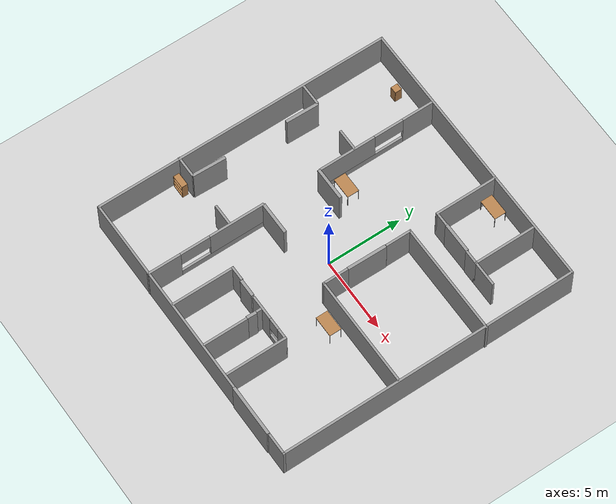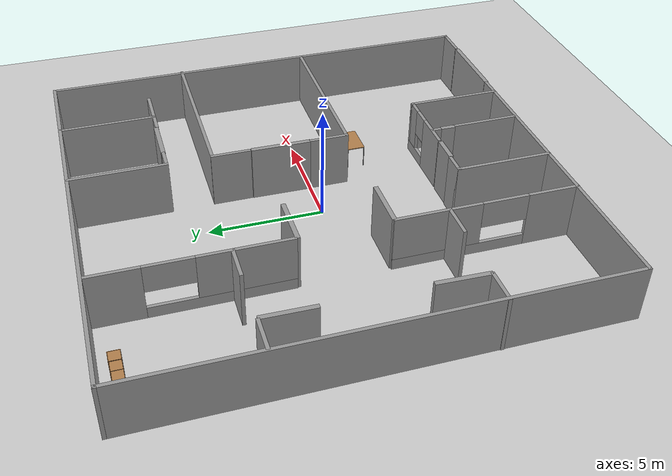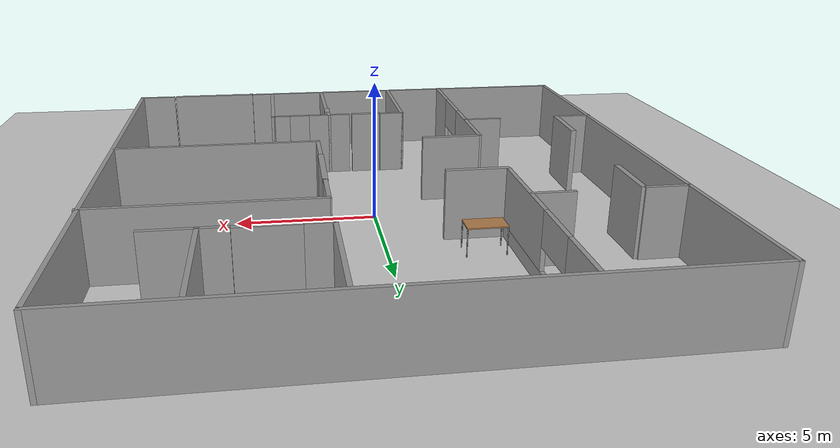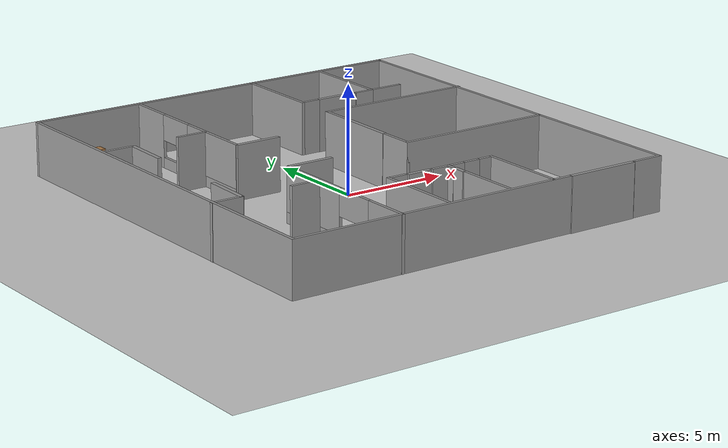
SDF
<sdf version="1.6">
 <world name="default">
  <light name="sun" type="directional">
   <pose>0 0 10 0 -0 0</pose>
   <diffuse>0.8 0.8 0.8 1</diffuse>
   <specular>0.1 0.1 0.1 1</specular>
   <attenuation>
    <range>1000</range>
    <constant>0.9</constant>
    <linear>0.01</linear>
    <quadratic>0.001</quadratic>
   </attenuation>
   <direction>-0.5 0.5 -1</direction>
  </light>
  <model name="ground_plane">
   <static>1</static>
   <link name="link">
    <collision name="collision">
     <geometry><plane><normal>0 0 1</normal><size>100 100</size></plane></geometry>
     <surface><friction><ode><mu>100</mu><mu2>50</mu2></ode></friction></surface>
    </collision>
    <visual name="visual">
     <cast_shadows>0</cast_shadows>
     <geometry><plane><normal>0 0 1</normal><size>100 100</size></plane></geometry>
     <material>
      <script><uri>file://media/materials/scripts/gazebo.material</uri><name>Gazebo/Grey</name></script>
     </material>
    </visual>
   </link>
  </model>
  <gravity>0 0 -9.8</gravity>
  <magnetic_field>6e-06 2.3e-05 -4.2e-05</magnetic_field>
  <atmosphere type="adiabatic"/>
  <physics name="default_physics" default="0" type="ode">
   <max_step_size>0.001</max_step_size>
   <real_time_factor>1</real_time_factor>
   <real_time_update_rate>1000</real_time_update_rate>
  </physics>
  <scene><ambient>0.4 0.4 0.4 1</ambient><background>0.7 0.7 0.7 1</background><shadows>1</shadows></scene>
  <spherical_coordinates>
   <surface_model>EARTH_WGS84</surface_model>
   <latitude_deg>0</latitude_deg>
   <longitude_deg>0</longitude_deg>
   <elevation>0</elevation>
   <heading_deg>0</heading_deg>
  </spherical_coordinates>
  <model name="lvhome">
   <pose>-0.04841 0.41699 0 0 -0 0</pose>
   <link name="Door_0">
    <collision name="Door_0_Collision">
     <geometry><box><size>3.439 0.2 2.5</size></box></geometry>
     <pose>0 0 1.25 0 -0 0</pose>
    </collision>
    <visual name="Door_0_Visual">
     <pose>0 0 1.25 0 -0 0</pose>
     <geometry><box><size>3.439 0.2 2.5</size></box></geometry>
     <material>
      <script><uri>file://media/materials/scripts/gazebo.material</uri><name>Gazebo/Grey</name></script>
     </material>
    </visual>
    <pose>6.2096 -9.93657 0 0 -0 0</pose>
   </link>
   <link name="Door_1">
    <collision name="Door_1_Collision">
     <geometry><box><size>1.17 0.2 2.5</size></box></geometry>
     <pose>0 0 1.25 0 -0 0</pose>
    </collision>
    <visual name="Door_1_Visual">
     <pose>0 0 1.25 0 -0 0</pose>
     <geometry><box><size>1.17 0.2 2.5</size></box></geometry>
     <material>
      <script><uri>file://media/materials/scripts/gazebo.material</uri><name>Gazebo/Grey</name></script>
     </material>
    </visual>
    <pose>-0.264645 -5.84269 0 0 -0 0</pose>
   </link>
   <link name="Door_10">
    <collision name="Door_10_Collision">
     <geometry><box><size>2.026 0.2 2.5</size></box></geometry>
     <pose>0 0 1.25 0 -0 0</pose>
    </collision>
    <visual name="Door_10_Visual">
     <pose>0 0 1.25 0 -0 0</pose>
     <geometry><box><size>2.026 0.2 2.5</size></box></geometry>
     <material>
      <script><uri>file://media/materials/scripts/gazebo.material</uri><name>Gazebo/Grey</name></script>
     </material>
    </visual>
    <pose>3.88951 5.83203 0 0 -0 0</pose>
   </link>
   <link name="Door_2">
    <collision name="Door_2_Collision">
     <geometry><box><size>0.646 0.2 2.5</size></box></geometry>
     <pose>0 0 1.25 0 -0 0</pose>
    </collision>
    <visual name="Door_2_Visual">
     <pose>0 0 1.25 0 -0 0</pose>
     <geometry><box><size>0.646 0.2 2.5</size></box></geometry>
     <material>
      <script><uri>file://media/materials/scripts/gazebo.material</uri><name>Gazebo/Grey</name></script>
     </material>
    </visual>
    <pose>1.29943 -6.59376 0 0 0 -1.60029</pose>
   </link>
   <link name="Door_5">
    <collision name="Door_5_Collision">
     <geometry><box><size>2.246 0.2 2.5</size></box></geometry>
     <pose>0 0 1.25 0 -0 0</pose>
    </collision>
    <visual name="Door_5_Visual">
     <pose>0 0 1.25 0 -0 0</pose>
     <geometry><box><size>2.246 0.2 2.5</size></box></geometry>
     <material>
      <script><uri>file://media/materials/scripts/gazebo.material</uri><name>Gazebo/Grey</name></script>
     </material>
    </visual>
    <pose>-8.05033 -3.25134 0 0 -0 1.53956</pose>
   </link>
   <link name="Door_6">
    <collision name="Door_6_Collision">
     <geometry><box><size>2.215 0.2 2.5</size></box></geometry>
     <pose>0 0 1.25 0 -0 0</pose>
    </collision>
    <visual name="Door_6_Visual">
     <pose>0 0 1.25 0 -0 0</pose>
     <geometry><box><size>2.215 0.2 2.5</size></box></geometry>
     <material>
      <script><uri>file://media/materials/scripts/gazebo.material</uri><name>Gazebo/Grey</name></script>
     </material>
    </visual>
    <pose>-7.94326 3.2032 0 0 0 -1.5889</pose>
   </link>
   <link name="Door_7">
    <collision name="Door_7_Collision">
     <geometry><box><size>2.2 0.2 2.5</size></box></geometry>
     <pose>0 0 1.25 0 -0 0</pose>
    </collision>
    <visual name="Door_7_Visual">
     <pose>0 0 1.25 0 -0 0</pose>
     <geometry><box><size>2.2 0.2 2.5</size></box></geometry>
     <material>
      <script><uri>file://media/materials/scripts/gazebo.material</uri><name>Gazebo/Grey</name></script>
     </material>
    </visual>
    <pose>-3.14487 1.84894 0 0 -0 0</pose>
   </link>
   <link name="Door_8">
    <collision name="Door_8_Collision">
     <geometry><box><size>2.2 0.2 2.5</size></box></geometry>
     <pose>0 0 1.25 0 -0 0</pose>
    </collision>
    <visual name="Door_8_Visual">
     <pose>0 0 1.25 0 -0 0</pose>
     <geometry><box><size>2.2 0.2 2.5</size></box></geometry>
     <material>
      <script><uri>file://media/materials/scripts/gazebo.material</uri><name>Gazebo/Grey</name></script>
     </material>
    </visual>
    <pose>-3.09632 -2.04086 0 0 -0 0</pose>
   </link>
   <link name="Door_9">
    <collision name="Door_9_Collision">
     <geometry><box><size>2.62011 0.2 2.5</size></box></geometry>
     <pose>0 0 1.25 0 -0 0</pose>
    </collision>
    <visual name="Door_9_Visual">
     <pose>0 0 1.25 0 -0 0</pose>
     <geometry><box><size>2.62011 0.2 2.5</size></box></geometry>
     <material>
      <script><uri>file://media/materials/scripts/gazebo.material</uri><name>Gazebo/Grey</name></script>
     </material>
    </visual>
    <pose>1.99502 0.874969 0 0 0 -1.58242</pose>
   </link>
   <link name="Wall_19">
    <collision name="Wall_19_Collision">
     <geometry><box><size>20 0.15 2.5</size></box></geometry>
     <pose>0 0 1.25 0 -0 0</pose>
    </collision>
    <visual name="Wall_19_Visual">
     <pose>0 0 1.25 0 -0 0</pose>
     <geometry><box><size>20 0.15 2.5</size></box></geometry>
     <material>
      <script><uri>file://media/materials/scripts/gazebo.material</uri><name>Gazebo/Grey</name></script>
      <ambient>1 1 1 1</ambient>
     </material>
    </visual>
    <pose>-9.44203 0.006844 0 0 0 -1.5708</pose>
   </link>
   <link name="Wall_24">
    <collision name="Wall_24_Collision">
     <geometry><box><size>19 0.15 2.5</size></box></geometry>
     <pose>0 0 1.25 0 -0 0</pose>
    </collision>
    <visual name="Wall_24_Visual">
     <pose>0 0 1.25 0 -0 0</pose>
     <geometry><box><size>19 0.15 2.5</size></box></geometry>
     <material>
      <script><uri>file://media/materials/scripts/gazebo.material</uri><name>Gazebo/Grey</name></script>
      <ambient>1 1 1 1</ambient>
     </material>
    </visual>
    <pose>-0.017033 9.93184 0 0 -0 0</pose>
   </link>
   <link name="Wall_25">
    <collision name="Wall_25_Collision">
     <geometry><box><size>20 0.15 2.5</size></box></geometry>
     <pose>0 0 1.25 0 -0 0</pose>
    </collision>
    <visual name="Wall_25_Visual">
     <pose>0 0 1.25 0 -0 0</pose>
     <geometry><box><size>20 0.15 2.5</size></box></geometry>
     <material>
      <script><uri>file://media/materials/scripts/gazebo.material</uri><name>Gazebo/Grey</name></script>
      <ambient>1 1 1 1</ambient>
     </material>
    </visual>
    <pose>9.40797 0.006844 0 0 0 -1.5708</pose>
   </link>
   <link name="Wall_26">
    <collision name="Wall_26_Collision">
     <geometry><box><size>1.5 0.15 2.5</size></box></geometry>
     <pose>0 0 1.25 0 -0 0</pose>
    </collision>
    <visual name="Wall_26_Visual">
     <pose>0 0 1.25 0 -0 0</pose>
     <geometry><box><size>1.5 0.15 2.5</size></box></geometry>
     <material>
      <script><uri>file://media/materials/scripts/gazebo.material</uri><name>Gazebo/Grey</name></script>
      <ambient>1 1 1 1</ambient>
     </material>
    </visual>
    <pose>8.73297 -9.91816 0 0 -0 3.14159</pose>
   </link>
   <link name="Wall_28">
    <collision name="Wall_28_Collision">
     <geometry><box><size>14 0.15 2.5</size></box></geometry>
     <pose>0 0 1.25 0 -0 0</pose>
    </collision>
    <visual name="Wall_28_Visual">
     <pose>0 0 1.25 0 -0 0</pose>
     <geometry><box><size>14 0.15 2.5</size></box></geometry>
     <material>
      <script><uri>file://media/materials/scripts/gazebo.material</uri><name>Gazebo/Grey</name></script>
      <ambient>1 1 1 1</ambient>
     </material>
    </visual>
    <pose>-2.51703 -9.91816 0 0 -0 0</pose>
   </link>
   <link name="Wall_30">
    <pose>-4.2172 -6.00685 0 0 -0 1.5708</pose>
    <visual name="Wall_30_Visual_0">
     <pose>-2.87904 0 1.25 0 -0 0</pose>
     <geometry><box><size>2.24191 0.15 2.5</size></box></geometry>
     <material>
      <script><uri>file://media/materials/scripts/gazebo.material</uri><name>Gazebo/Grey</name></script>
      <ambient>1 1 1 1</ambient>
     </material>
    </visual>
    <collision name="Wall_30_Collision_0">
     <geometry><box><size>2.24191 0.15 2.5</size></box></geometry>
     <pose>-2.87904 0 1.25 0 -0 0</pose>
    </collision>
    <visual name="Wall_30_Visual_1">
     <pose>1.12096 0 0.25 0 -0 0</pose>
     <geometry><box><size>5.75809 0.15 0.5</size></box></geometry>
     <material>
      <script><uri>file://media/materials/scripts/gazebo.material</uri><name>Gazebo/Grey</name></script>
      <ambient>1 1 1 1</ambient>
     </material>
    </visual>
    <collision name="Wall_30_Collision_1">
     <geometry><box><size>5.75809 0.15 0.5</size></box></geometry>
     <pose>1.12096 0 0.25 0 -0 0</pose>
    </collision>
    <visual name="Wall_30_Visual_2">
     <pose>2.12096 0 1.5 0 -0 0</pose>
     <geometry><box><size>3.75809 0.15 2</size></box></geometry>
     <material>
      <script><uri>file://media/materials/scripts/gazebo.material</uri><name>Gazebo/Grey</name></script>
      <ambient>1 1 1 1</ambient>
     </material>
    </visual>
    <collision name="Wall_30_Collision_2">
     <geometry><box><size>3.75809 0.15 2</size></box></geometry>
     <pose>2.12096 0 1.5 0 -0 0</pose>
    </collision>
    <visual name="Wall_30_Visual_3">
     <pose>-0.758088 0 1.9 0 -0 0</pose>
     <geometry><box><size>2 0.15 1.2</size></box></geometry>
     <material>
      <script><uri>file://media/materials/scripts/gazebo.material</uri><name>Gazebo/Grey</name></script>
      <ambient>1 1 1 1</ambient>
     </material>
    </visual>
    <collision name="Wall_30_Collision_3">
     <geometry><box><size>2 0.15 1.2</size></box></geometry>
     <pose>-0.758088 0 1.9 0 -0 0</pose>
    </collision>
   </link>
   <link name="Wall_32">
    <pose>-4.21045 5.86584 0 0 0 -1.5708</pose>
    <visual name="Wall_32_Visual_0">
     <pose>-2.94497 0 1.25 0 -0 0</pose>
     <geometry><box><size>2.11005 0.15 2.5</size></box></geometry>
     <material>
      <script><uri>file://media/materials/scripts/gazebo.material</uri><name>Gazebo/Grey</name></script>
      <ambient>1 1 1 1</ambient>
     </material>
    </visual>
    <collision name="Wall_32_Collision_0">
     <geometry><box><size>2.11005 0.15 2.5</size></box></geometry>
     <pose>-2.94497 0 1.25 0 -0 0</pose>
    </collision>
    <visual name="Wall_32_Visual_1">
     <pose>1.05503 0 0.25 0 -0 0</pose>
     <geometry><box><size>5.88995 0.15 0.5</size></box></geometry>
     <material>
      <script><uri>file://media/materials/scripts/gazebo.material</uri><name>Gazebo/Grey</name></script>
      <ambient>1 1 1 1</ambient>
     </material>
    </visual>
    <collision name="Wall_32_Collision_1">
     <geometry><box><size>5.88995 0.15 0.5</size></box></geometry>
     <pose>1.05503 0 0.25 0 -0 0</pose>
    </collision>
    <visual name="Wall_32_Visual_2">
     <pose>2.05503 0 1.5 0 -0 0</pose>
     <geometry><box><size>3.88995 0.15 2</size></box></geometry>
     <material>
      <script><uri>file://media/materials/scripts/gazebo.material</uri><name>Gazebo/Grey</name></script>
      <ambient>1 1 1 1</ambient>
     </material>
    </visual>
    <collision name="Wall_32_Collision_2">
     <geometry><box><size>3.88995 0.15 2</size></box></geometry>
     <pose>2.05503 0 1.5 0 -0 0</pose>
    </collision>
    <visual name="Wall_32_Visual_3">
     <pose>-0.889946 0 1.9 0 -0 0</pose>
     <geometry><box><size>2 0.15 1.2</size></box></geometry>
     <material>
      <script><uri>file://media/materials/scripts/gazebo.material</uri><name>Gazebo/Grey</name></script>
      <ambient>1 1 1 1</ambient>
     </material>
    </visual>
    <collision name="Wall_32_Collision_3">
     <geometry><box><size>2 0.15 1.2</size></box></geometry>
     <pose>-0.889946 0 1.9 0 -0 0</pose>
    </collision>
   </link>
   <link name="Wall_34">
    <collision name="Wall_34_Collision">
     <geometry><box><size>1.5 0.15 2.5</size></box></geometry>
     <pose>0 0 1.25 0 -0 0</pose>
    </collision>
    <visual name="Wall_34_Visual">
     <pose>0 0 1.25 0 -0 0</pose>
     <geometry><box><size>1.5 0.15 2.5</size></box></geometry>
     <material>
      <script><uri>file://media/materials/scripts/gazebo.material</uri><name>Gazebo/Grey</name></script>
      <ambient>1 1 1 1</ambient>
     </material>
    </visual>
    <pose>-8.79265 -4.35243 0 0 -0 0</pose>
   </link>
   <link name="Wall_36">
    <collision name="Wall_36_Collision">
     <geometry><box><size>1.5 0.15 2.5</size></box></geometry>
     <pose>0 0 1.25 0 -0 0</pose>
    </collision>
    <visual name="Wall_36_Visual">
     <pose>0 0 1.25 0 -0 0</pose>
     <geometry><box><size>1.5 0.15 2.5</size></box></geometry>
     <material>
      <script><uri>file://media/materials/scripts/gazebo.material</uri><name>Gazebo/Grey</name></script>
      <ambient>1 1 1 1</ambient>
     </material>
    </visual>
    <pose>-4.93198 -4.35243 0 0 -0 3.14159</pose>
   </link>
   <link name="Wall_40">
    <collision name="Wall_40_Collision">
     <geometry><box><size>1.5 0.15 2.5</size></box></geometry>
     <pose>0 0 1.25 0 -0 0</pose>
    </collision>
    <visual name="Wall_40_Visual">
     <pose>0 0 1.25 0 -0 0</pose>
     <geometry><box><size>1.5 0.15 2.5</size></box></geometry>
     <material>
      <script><uri>file://media/materials/scripts/gazebo.material</uri><name>Gazebo/Grey</name></script>
      <ambient>1 1 1 1</ambient>
     </material>
    </visual>
    <pose>-8.69961 4.30102 0 0 -0 0</pose>
   </link>
   <link name="Wall_42">
    <collision name="Wall_42_Collision">
     <geometry><box><size>1.5 0.15 2.5</size></box></geometry>
     <pose>0 0 1.25 0 -0 0</pose>
    </collision>
    <visual name="Wall_42_Visual">
     <pose>0 0 1.25 0 -0 0</pose>
     <geometry><box><size>1.5 0.15 2.5</size></box></geometry>
     <material>
      <script><uri>file://media/materials/scripts/gazebo.material</uri><name>Gazebo/Grey</name></script>
      <ambient>1 1 1 1</ambient>
     </material>
    </visual>
    <pose>-4.93198 4.34755 0 0 -0 3.14159</pose>
   </link>
   <link name="Wall_44">
    <collision name="Wall_44_Collision">
     <geometry><box><size>4.25 0.15 2.5</size></box></geometry>
     <pose>0 0 1.25 0 -0 0</pose>
    </collision>
    <visual name="Wall_44_Visual">
     <pose>0 0 1.25 0 -0 0</pose>
     <geometry><box><size>4.25 0.15 2.5</size></box></geometry>
     <material>
      <script><uri>file://media/materials/scripts/gazebo.material</uri><name>Gazebo/Grey</name></script>
      <ambient>1 1 1 1</ambient>
     </material>
    </visual>
    <pose>1.97723 7.88042 0 0 0 -1.5708</pose>
   </link>
   <link name="Wall_45">
    <collision name="Wall_45_Collision">
     <geometry><box><size>1 0.15 2.5</size></box></geometry>
     <pose>0 0 1.25 0 -0 0</pose>
    </collision>
    <visual name="Wall_45_Visual">
     <pose>0 0 1.25 0 -0 0</pose>
     <geometry><box><size>1 0.15 2.5</size></box></geometry>
     <material>
      <script><uri>file://media/materials/scripts/gazebo.material</uri><name>Gazebo/Grey</name></script>
      <ambient>1 1 1 1</ambient>
     </material>
    </visual>
    <pose>2.40223 5.83042 0 0 -0 0</pose>
   </link>
   <link name="Wall_47">
    <collision name="Wall_47_Collision">
     <geometry><box><size>4.25 0.15 2.5</size></box></geometry>
     <pose>0 0 1.25 0 -0 0</pose>
    </collision>
    <visual name="Wall_47_Visual">
     <pose>0 0 1.25 0 -0 0</pose>
     <geometry><box><size>4.25 0.15 2.5</size></box></geometry>
     <material>
      <script><uri>file://media/materials/scripts/gazebo.material</uri><name>Gazebo/Grey</name></script>
      <ambient>1 1 1 1</ambient>
     </material>
    </visual>
    <pose>5.83871 7.83389 0 0 0 -1.5708</pose>
   </link>
   <link name="Wall_49">
    <collision name="Wall_49_Collision">
     <geometry><box><size>1 0.15 2.5</size></box></geometry>
     <pose>0 0 1.25 0 -0 0</pose>
    </collision>
    <visual name="Wall_49_Visual">
     <pose>0 0 1.25 0 -0 0</pose>
     <geometry><box><size>1 0.15 2.5</size></box></geometry>
     <material>
      <script><uri>file://media/materials/scripts/gazebo.material</uri><name>Gazebo/Grey</name></script>
      <ambient>1 1 1 1</ambient>
     </material>
    </visual>
    <pose>5.41371 5.78389 0 0 -0 3.14159</pose>
   </link>
   <link name="Wall_51">
    <collision name="Wall_51_Collision">
     <geometry><box><size>1.75 0.15 2.5</size></box></geometry>
     <pose>0 0 1.25 0 -0 0</pose>
    </collision>
    <visual name="Wall_51_Visual">
     <pose>0 0 1.25 0 -0 0</pose>
     <geometry><box><size>1.75 0.15 2.5</size></box></geometry>
     <material>
      <script><uri>file://media/materials/scripts/gazebo.material</uri><name>Gazebo/Grey</name></script>
      <ambient>1 1 1 1</ambient>
     </material>
    </visual>
    <pose>6.63872 5.78389 0 0 -0 0</pose>
   </link>
   <link name="Wall_53">
    <collision name="Wall_53_Collision">
     <geometry><box><size>7.56405 0.15 2.5</size></box></geometry>
     <pose>0 0 1.25 0 -0 0</pose>
    </collision>
    <visual name="Wall_53_Visual">
     <pose>0 0 1.25 0 -0 0</pose>
     <geometry><box><size>7.56405 0.15 2.5</size></box></geometry>
     <material>
      <script><uri>file://media/materials/scripts/gazebo.material</uri><name>Gazebo/Grey</name></script>
      <ambient>1 1 1 1</ambient>
     </material>
    </visual>
    <pose>5.76063 3.88231 0 0 -0 3.14159</pose>
   </link>
   <link name="Wall_55">
    <collision name="Wall_55_Collision">
     <geometry><box><size>1.75 0.15 2.5</size></box></geometry>
     <pose>0 0 1.25 0 -0 0</pose>
    </collision>
    <visual name="Wall_55_Visual">
     <pose>0 0 1.25 0 -0 0</pose>
     <geometry><box><size>1.75 0.15 2.5</size></box></geometry>
     <material>
      <script><uri>file://media/materials/scripts/gazebo.material</uri><name>Gazebo/Grey</name></script>
      <ambient>1 1 1 1</ambient>
     </material>
    </visual>
    <pose>2.00715 3.08231 0 0 0 -1.5708</pose>
   </link>
   <link name="Wall_57">
    <collision name="Wall_57_Collision">
     <geometry><box><size>1.75 0.15 2.5</size></box></geometry>
     <pose>0 0 1.25 0 -0 0</pose>
    </collision>
    <visual name="Wall_57_Visual">
     <pose>0 0 1.25 0 -0 0</pose>
     <geometry><box><size>1.75 0.15 2.5</size></box></geometry>
     <material>
      <script><uri>file://media/materials/scripts/gazebo.material</uri><name>Gazebo/Grey</name></script>
      <ambient>1 1 1 1</ambient>
     </material>
    </visual>
    <pose>1.97723 -1.29094 0 0 0 -1.5708</pose>
   </link>
   <link name="Wall_59">
    <collision name="Wall_59_Collision">
     <geometry><box><size>7.5 0.15 2.5</size></box></geometry>
     <pose>0 0 1.25 0 -0 0</pose>
    </collision>
    <visual name="Wall_59_Visual">
     <pose>0 0 1.25 0 -0 0</pose>
     <geometry><box><size>7.5 0.15 2.5</size></box></geometry>
     <material>
      <script><uri>file://media/materials/scripts/gazebo.material</uri><name>Gazebo/Grey</name></script>
      <ambient>1 1 1 1</ambient>
     </material>
    </visual>
    <pose>5.65223 -2.09094 0 0 -0 0</pose>
   </link>
   <link name="Wall_61">
    <collision name="Wall_61_Collision">
     <geometry><box><size>4.25 0.15 2.5</size></box></geometry>
     <pose>0 0 1.25 0 -0 0</pose>
    </collision>
    <visual name="Wall_61_Visual">
     <pose>0 0 1.25 0 -0 0</pose>
     <geometry><box><size>4.25 0.15 2.5</size></box></geometry>
     <material>
      <script><uri>file://media/materials/scripts/gazebo.material</uri><name>Gazebo/Grey</name></script>
      <ambient>1 1 1 1</ambient>
     </material>
    </visual>
    <pose>-1.79121 -7.83877 0 0 -0 1.5708</pose>
   </link>
   <link name="Wall_62">
    <collision name="Wall_62_Collision">
     <geometry><box><size>1 0.15 2.5</size></box></geometry>
     <pose>0 0 1.25 0 -0 0</pose>
    </collision>
    <visual name="Wall_62_Visual">
     <pose>0 0 1.25 0 -0 0</pose>
     <geometry><box><size>1 0.15 2.5</size></box></geometry>
     <material>
      <script><uri>file://media/materials/scripts/gazebo.material</uri><name>Gazebo/Grey</name></script>
      <ambient>1 1 1 1</ambient>
     </material>
    </visual>
    <pose>-1.36621 -5.78877 0 0 -0 0</pose>
   </link>
   <link name="Wall_64">
    <pose>2.03846 -5.84119 0 0 -0 0</pose>
    <visual name="Wall_64_Visual_0">
     <pose>-0.782015 0 1.25 0 -0 0</pose>
     <geometry><box><size>1.68597 0.15 2.5</size></box></geometry>
     <material>
      <script><uri>file://media/materials/scripts/gazebo.material</uri><name>Gazebo/Grey</name></script>
      <ambient>1 1 1 1</ambient>
     </material>
    </visual>
    <collision name="Wall_64_Collision_0">
     <geometry><box><size>1.68597 0.15 2.5</size></box></geometry>
     <pose>-0.782015 0 1.25 0 -0 0</pose>
    </collision>
    <visual name="Wall_64_Visual_1">
     <pose>0.842985 0 0.25 0 -0 0</pose>
     <geometry><box><size>1.56403 0.15 0.5</size></box></geometry>
     <material>
      <script><uri>file://media/materials/scripts/gazebo.material</uri><name>Gazebo/Grey</name></script>
      <ambient>1 1 1 1</ambient>
     </material>
    </visual>
    <collision name="Wall_64_Collision_1">
     <geometry><box><size>1.56403 0.15 0.5</size></box></geometry>
     <pose>0.842985 0 0.25 0 -0 0</pose>
    </collision>
    <visual name="Wall_64_Visual_2">
     <pose>1.24299 0 1.5 0 -0 0</pose>
     <geometry><box><size>0.76403 0.15 2</size></box></geometry>
     <material>
      <script><uri>file://media/materials/scripts/gazebo.material</uri><name>Gazebo/Grey</name></script>
      <ambient>1 1 1 1</ambient>
     </material>
    </visual>
    <collision name="Wall_64_Collision_2">
     <geometry><box><size>0.76403 0.15 2</size></box></geometry>
     <pose>1.24299 0 1.5 0 -0 0</pose>
    </collision>
    <visual name="Wall_64_Visual_3">
     <pose>0.46097 0 1.9 0 -0 0</pose>
     <geometry><box><size>0.8 0.15 1.2</size></box></geometry>
     <material>
      <script><uri>file://media/materials/scripts/gazebo.material</uri><name>Gazebo/Grey</name></script>
      <ambient>1 1 1 1</ambient>
     </material>
    </visual>
    <collision name="Wall_64_Collision_3">
     <geometry><box><size>0.8 0.15 1.2</size></box></geometry>
     <pose>0.46097 0 1.9 0 -0 0</pose>
    </collision>
   </link>
   <link name="Wall_65">
    <collision name="Wall_65_Collision">
     <geometry><box><size>4.2 0.15 2.5</size></box></geometry>
     <pose>0 0 1.25 0 -0 0</pose>
    </collision>
    <visual name="Wall_65_Visual">
     <pose>0 0 1.25 0 -0 0</pose>
     <geometry><box><size>4.2 0.15 2.5</size></box></geometry>
     <material>
      <script><uri>file://media/materials/scripts/gazebo.material</uri><name>Gazebo/Grey</name></script>
      <ambient>1 1 1 1</ambient>
     </material>
    </visual>
    <pose>3.58846 -7.86619 0 0 0 -1.5708</pose>
   </link>
   <link name="Wall_67">
    <collision name="Wall_67_Collision">
     <geometry><box><size>0.5 0.15 2.5</size></box></geometry>
     <pose>0 0 1.25 0 -0 0</pose>
    </collision>
    <visual name="Wall_67_Visual">
     <pose>0 0 1.25 0 -0 0</pose>
     <geometry><box><size>0.5 0.15 2.5</size></box></geometry>
     <material>
      <script><uri>file://media/materials/scripts/gazebo.material</uri><name>Gazebo/Grey</name></script>
      <ambient>1 1 1 1</ambient>
     </material>
    </visual>
    <pose>1.27937 -6.01619 0 0 0 -1.5708</pose>
   </link>
   <link name="Wall_69">
    <collision name="Wall_69_Collision">
     <geometry><box><size>3 0.15 2.5</size></box></geometry>
     <pose>0 0 1.25 0 -0 0</pose>
    </collision>
    <visual name="Wall_69_Visual">
     <pose>0 0 1.25 0 -0 0</pose>
     <geometry><box><size>3 0.15 2.5</size></box></geometry>
     <material>
      <script><uri>file://media/materials/scripts/gazebo.material</uri><name>Gazebo/Grey</name></script>
      <ambient>1 1 1 1</ambient>
     </material>
    </visual>
    <pose>1.3259 -8.38276 0 0 0 -1.5708</pose>
   </link>
   <static>1</static>
  </model>
  <model name="table">
   <static>0</static>
   <link name="link">
    <collision name="surface">
     <pose>0 0 1 0 -0 0</pose>
     <geometry><box><size>1.5 0.8 0.03</size></box></geometry>
     <surface><friction><ode><mu>0.6</mu><mu2>0.6</mu2></ode></friction></surface>
    </collision>
    <visual name="visual1">
     <pose>0 0 1 0 -0 0</pose>
     <geometry><box><size>1.4 0.8 0.04</size></box></geometry>
     <material>
      <script><uri>file://media/materials/scripts/gazebo.material</uri><name>Gazebo/Wood</name></script>
     </material>
    </visual>
    <collision name="front_left_leg">
     <pose>0.68 0.38 0.5 0 -0 0</pose>
     <geometry><cylinder><radius>0.02</radius><length>1</length></cylinder></geometry>
    </collision>
    <visual name="front_left_leg">
     <pose>0.68 0.38 0.5 0 -0 0</pose>
     <geometry><cylinder><radius>0.02</radius><length>1</length></cylinder></geometry>
     <material>
      <script><uri>file://media/materials/scripts/gazebo.material</uri><name>Gazebo/Grey</name></script>
     </material>
    </visual>
    <collision name="front_right_leg">
     <pose>0.68 -0.38 0.5 0 -0 0</pose>
     <geometry><cylinder><radius>0.02</radius><length>1</length></cylinder></geometry>
    </collision>
    <visual name="front_right_leg">
     <pose>0.68 -0.38 0.5 0 -0 0</pose>
     <geometry><cylinder><radius>0.02</radius><length>1</length></cylinder></geometry>
     <material>
      <script><uri>file://media/materials/scripts/gazebo.material</uri><name>Gazebo/Grey</name></script>
     </material>
    </visual>
    <collision name="back_right_leg">
     <pose>-0.68 -0.38 0.5 0 -0 0</pose>
     <geometry><cylinder><radius>0.02</radius><length>1</length></cylinder></geometry>
    </collision>
    <visual name="back_right_leg">
     <pose>-0.68 -0.38 0.5 0 -0 0</pose>
     <geometry><cylinder><radius>0.02</radius><length>1</length></cylinder></geometry>
     <material>
      <script><uri>file://media/materials/scripts/gazebo.material</uri><name>Gazebo/Grey</name></script>
     </material>
    </visual>
    <collision name="back_left_leg">
     <pose>-0.68 0.38 0.5 0 -0 0</pose>
     <geometry><cylinder><radius>0.02</radius><length>1</length></cylinder></geometry>
    </collision>
    <visual name="back_left_leg">
     <pose>-0.68 0.38 0.5 0 -0 0</pose>
     <geometry><cylinder><radius>0.02</radius><length>1</length></cylinder></geometry>
     <material>
      <script><uri>file://media/materials/scripts/gazebo.material</uri><name>Gazebo/Grey</name></script>
     </material>
    </visual>
    <inertial>
     <inertia><ixx>1</ixx><ixy>0</ixy><ixz>0</ixz><iyy>1</iyy><iyz>0</iyz><izz>1</izz></inertia>
     <mass>1</mass>
    </inertial>
   </link>
   <pose>2.81567 9.64961 -9e-06 0 -1e-06 0</pose>
  </model>
  <model name="cabinet">
   <static>1</static>
   <link name="cabinet_bottom_plate">
    <inertial>
     <pose>0 0 -1 0 -0 0</pose>
     <inertia><ixx>2.05</ixx><ixy>0</ixy><ixz>0</ixz><iyy>2.05</iyy><iyz>0</iyz><izz>2.05</izz></inertia>
     <mass>25</mass>
    </inertial>
    <collision name="cabinet_bottom_plate_geom">
     <pose>0 0 0.01 0 -0 0</pose>
     <geometry><box><size>0.45 0.45 0.02</size></box></geometry>
    </collision>
    <visual name="cabinet_bottom_plate_geom_visual">
     <pose>0 0 0.01 0 -0 0</pose>
     <geometry><box><size>0.45 0.45 0.02</size></box></geometry>
     <material>
      <script><uri>file://media/materials/scripts/gazebo.material</uri><name>Gazebo/Wood</name></script>
     </material>
    </visual>
    <collision name="cabinet_bottom_plate_geom_cabinet_back_plate">
     <pose>0.235 0 0.51 0 -0 0</pose>
     <geometry><box><size>0.02 0.45 1.02</size></box></geometry>
    </collision>
    <visual name="cabinet_bottom_plate_geom_cabinet_back_plate_visual">
     <pose>0.235 0 0.51 0 -0 0</pose>
     <geometry><box><size>0.02 0.45 1.02</size></box></geometry>
     <material>
      <script><uri>file://media/materials/scripts/gazebo.material</uri><name>Gazebo/Wood</name></script>
     </material>
    </visual>
    <collision name="cabinet_bottom_plate_geom_cabinet_left_plate">
     <pose>0 0.235 0.51 0 -0 0</pose>
     <geometry><box><size>0.45 0.02 1.02</size></box></geometry>
    </collision>
    <visual name="cabinet_bottom_plate_geom_cabinet_left_plate_visual">
     <pose>0 0.235 0.51 0 -0 0</pose>
     <geometry><box><size>0.45 0.02 1.02</size></box></geometry>
     <material>
      <script><uri>file://media/materials/scripts/gazebo.material</uri><name>Gazebo/Wood</name></script>
     </material>
    </visual>
    <collision name="cabinet_bottom_plate_geom_cabinet_middle_plate">
     <pose>0 0 0.51 0 -0 0</pose>
     <geometry><box><size>0.45 0.45 0.02</size></box></geometry>
    </collision>
    <visual name="cabinet_bottom_plate_geom_cabinet_middle_plate_visual">
     <pose>0 0 0.51 0 -0 0</pose>
     <geometry><box><size>0.45 0.45 0.02</size></box></geometry>
     <material>
      <script><uri>file://media/materials/scripts/gazebo.material</uri><name>Gazebo/Wood</name></script>
     </material>
    </visual>
    <collision name="cabinet_bottom_plate_geom_cabinet_right_plate">
     <pose>0 -0.235 0.51 0 -0 0</pose>
     <geometry><box><size>0.45 0.02 1.02</size></box></geometry>
    </collision>
    <visual name="cabinet_bottom_plate_geom_cabinet_right_plate_visual">
     <pose>0 -0.235 0.51 0 -0 0</pose>
     <geometry><box><size>0.45 0.02 1.02</size></box></geometry>
     <material>
      <script><uri>file://media/materials/scripts/gazebo.material</uri><name>Gazebo/Wood</name></script>
     </material>
    </visual>
    <collision name="cabinet_bottom_plate_geom_cabinet_top_plate">
     <pose>0 0 1.01 0 -0 0</pose>
     <geometry><box><size>0.45 0.45 0.02</size></box></geometry>
    </collision>
    <visual name="cabinet_bottom_plate_geom_cabinet_top_plate_visual">
     <pose>0 0 1.01 0 -0 0</pose>
     <geometry><box><size>0.45 0.45 0.02</size></box></geometry>
     <material>
      <script><uri>file://media/materials/scripts/gazebo.material</uri><name>Gazebo/Wood</name></script>
     </material>
    </visual>
   </link>
   <pose>-6.89778 9.60511 0 0 -0 0</pose>
  </model>
  <model name="bookshelf">
   <static>1</static>
   <link name="link">
    <inertial><mass>1</mass></inertial>
    <collision name="back">
     <pose>0 0.005 0.6 0 -0 0</pose>
     <geometry><box><size>0.9 0.01 1.2</size></box></geometry>
    </collision>
    <visual name="visual1">
     <pose>0 0.005 0.6 0 -0 0</pose>
     <geometry><box><size>0.9 0.01 1.2</size></box></geometry>
     <material>
      <script><uri>file://media/materials/scripts/gazebo.material</uri><name>Gazebo/Wood</name></script>
     </material>
    </visual>
    <collision name="left_side">
     <pose>0.45 -0.195 0.6 0 -0 0</pose>
     <geometry><box><size>0.02 0.4 1.2</size></box></geometry>
    </collision>
    <visual name="visual2">
     <pose>0.45 -0.195 0.6 0 -0 0</pose>
     <geometry><box><size>0.02 0.4 1.2</size></box></geometry>
     <material>
      <script><uri>file://media/materials/scripts/gazebo.material</uri><name>Gazebo/Wood</name></script>
     </material>
    </visual>
    <collision name="right_side">
     <pose>-0.45 -0.195 0.6 0 -0 0</pose>
     <geometry><box><size>0.02 0.4 1.2</size></box></geometry>
    </collision>
    <visual name="visual3">
     <pose>-0.45 -0.195 0.6 0 -0 0</pose>
     <geometry><box><size>0.02 0.4 1.2</size></box></geometry>
     <material>
      <script><uri>file://media/materials/scripts/gazebo.material</uri><name>Gazebo/Wood</name></script>
     </material>
    </visual>
    <collision name="bottom">
     <pose>0 -0.195 0.03 0 -0 0</pose>
     <geometry><box><size>0.88 0.4 0.06</size></box></geometry>
    </collision>
    <visual name="visual4">
     <pose>0 -0.195 0.03 0 -0 0</pose>
     <geometry><box><size>0.88 0.4 0.06</size></box></geometry>
     <material>
      <script><uri>file://media/materials/scripts/gazebo.material</uri><name>Gazebo/Wood</name></script>
     </material>
    </visual>
    <collision name="top">
     <pose>0 -0.195 1.19 0 -0 0</pose>
     <geometry><box><size>0.88 0.4 0.02</size></box></geometry>
    </collision>
    <visual name="visual5">
     <pose>0 -0.195 1.19 0 -0 0</pose>
     <geometry><box><size>0.88 0.4 0.02</size></box></geometry>
     <material>
      <script><uri>file://media/materials/scripts/gazebo.material</uri><name>Gazebo/Wood</name></script>
     </material>
    </visual>
    <collision name="low_shelf">
     <pose>0 -0.195 0.43 0 -0 0</pose>
     <geometry><box><size>0.88 0.4 0.02</size></box></geometry>
    </collision>
    <visual name="visual6">
     <pose>0 -0.195 0.43 0 -0 0</pose>
     <geometry><box><size>0.88 0.4 0.02</size></box></geometry>
     <material>
      <script><uri>file://media/materials/scripts/gazebo.material</uri><name>Gazebo/Wood</name></script>
     </material>
    </visual>
    <collision name="high_shelf">
     <pose>0 -0.195 0.8 0 -0 0</pose>
     <geometry><box><size>0.88 0.4 0.02</size></box></geometry>
    </collision>
    <visual name="visual7">
     <pose>0 -0.195 0.8 0 -0 0</pose>
     <geometry><box><size>0.88 0.4 0.02</size></box></geometry>
     <material>
      <script><uri>file://media/materials/scripts/gazebo.material</uri><name>Gazebo/Wood</name></script>
     </material>
    </visual>
   </link>
   <pose>-8.88759 -4.15202 0 0 -0 0</pose>
  </model>
  <model name="table_0">
   <static>0</static>
   <link name="link">
    <collision name="surface">
     <pose>0 0 1 0 -0 0</pose>
     <geometry><box><size>1.5 0.8 0.03</size></box></geometry>
     <surface><friction><ode><mu>0.6</mu><mu2>0.6</mu2></ode></friction></surface>
    </collision>
    <visual name="visual1">
     <pose>0 0 1 0 -0 0</pose>
     <geometry><box><size>1.4 0.8 0.04</size></box></geometry>
     <material>
      <script><uri>file://media/materials/scripts/gazebo.material</uri><name>Gazebo/Wood</name></script>
     </material>
    </visual>
    <collision name="front_left_leg">
     <pose>0.68 0.38 0.5 0 -0 0</pose>
     <geometry><cylinder><radius>0.02</radius><length>1</length></cylinder></geometry>
    </collision>
    <visual name="front_left_leg">
     <pose>0.68 0.38 0.5 0 -0 0</pose>
     <geometry><cylinder><radius>0.02</radius><length>1</length></cylinder></geometry>
     <material>
      <script><uri>file://media/materials/scripts/gazebo.material</uri><name>Gazebo/Grey</name></script>
     </material>
    </visual>
    <collision name="front_right_leg">
     <pose>0.68 -0.38 0.5 0 -0 0</pose>
     <geometry><cylinder><radius>0.02</radius><length>1</length></cylinder></geometry>
    </collision>
    <visual name="front_right_leg">
     <pose>0.68 -0.38 0.5 0 -0 0</pose>
     <geometry><cylinder><radius>0.02</radius><length>1</length></cylinder></geometry>
     <material>
      <script><uri>file://media/materials/scripts/gazebo.material</uri><name>Gazebo/Grey</name></script>
     </material>
    </visual>
    <collision name="back_right_leg">
     <pose>-0.68 -0.38 0.5 0 -0 0</pose>
     <geometry><cylinder><radius>0.02</radius><length>1</length></cylinder></geometry>
    </collision>
    <visual name="back_right_leg">
     <pose>-0.68 -0.38 0.5 0 -0 0</pose>
     <geometry><cylinder><radius>0.02</radius><length>1</length></cylinder></geometry>
     <material>
      <script><uri>file://media/materials/scripts/gazebo.material</uri><name>Gazebo/Grey</name></script>
     </material>
    </visual>
    <collision name="back_left_leg">
     <pose>-0.68 0.38 0.5 0 -0 0</pose>
     <geometry><cylinder><radius>0.02</radius><length>1</length></cylinder></geometry>
    </collision>
    <visual name="back_left_leg">
     <pose>-0.68 0.38 0.5 0 -0 0</pose>
     <geometry><cylinder><radius>0.02</radius><length>1</length></cylinder></geometry>
     <material>
      <script><uri>file://media/materials/scripts/gazebo.material</uri><name>Gazebo/Grey</name></script>
     </material>
    </visual>
    <inertial>
     <inertia><ixx>1</ixx><ixy>0</ixy><ixz>0</ixz><iyy>1</iyy><iyz>0</iyz><izz>1</izz></inertia>
     <mass>1</mass>
    </inertial>
   </link>
   <pose>-3.21474 3.4679 -9e-06 0 -1e-06 0</pose>
  </model>
  <model name="table_1">
   <static>0</static>
   <link name="link">
    <collision name="surface">
     <pose>0 0 1 0 -0 0</pose>
     <geometry><box><size>1.5 0.8 0.03</size></box></geometry>
     <surface><friction><ode><mu>0.6</mu><mu2>0.6</mu2></ode></friction></surface>
    </collision>
    <visual name="visual1">
     <pose>0 0 1 0 -0 0</pose>
     <geometry><box><size>1.4 0.8 0.04</size></box></geometry>
     <material>
      <script><uri>file://media/materials/scripts/gazebo.material</uri><name>Gazebo/Wood</name></script>
     </material>
    </visual>
    <collision name="front_left_leg">
     <pose>0.68 0.38 0.5 0 -0 0</pose>
     <geometry><cylinder><radius>0.02</radius><length>1</length></cylinder></geometry>
    </collision>
    <visual name="front_left_leg">
     <pose>0.68 0.38 0.5 0 -0 0</pose>
     <geometry><cylinder><radius>0.02</radius><length>1</length></cylinder></geometry>
     <material>
      <script><uri>file://media/materials/scripts/gazebo.material</uri><name>Gazebo/Grey</name></script>
     </material>
    </visual>
    <collision name="front_right_leg">
     <pose>0.68 -0.38 0.5 0 -0 0</pose>
     <geometry><cylinder><radius>0.02</radius><length>1</length></cylinder></geometry>
    </collision>
    <visual name="front_right_leg">
     <pose>0.68 -0.38 0.5 0 -0 0</pose>
     <geometry><cylinder><radius>0.02</radius><length>1</length></cylinder></geometry>
     <material>
      <script><uri>file://media/materials/scripts/gazebo.material</uri><name>Gazebo/Grey</name></script>
     </material>
    </visual>
    <collision name="back_right_leg">
     <pose>-0.68 -0.38 0.5 0 -0 0</pose>
     <geometry><cylinder><radius>0.02</radius><length>1</length></cylinder></geometry>
    </collision>
    <visual name="back_right_leg">
     <pose>-0.68 -0.38 0.5 0 -0 0</pose>
     <geometry><cylinder><radius>0.02</radius><length>1</length></cylinder></geometry>
     <material>
      <script><uri>file://media/materials/scripts/gazebo.material</uri><name>Gazebo/Grey</name></script>
     </material>
    </visual>
    <collision name="back_left_leg">
     <pose>-0.68 0.38 0.5 0 -0 0</pose>
     <geometry><cylinder><radius>0.02</radius><length>1</length></cylinder></geometry>
    </collision>
    <visual name="back_left_leg">
     <pose>-0.68 0.38 0.5 0 -0 0</pose>
     <geometry><cylinder><radius>0.02</radius><length>1</length></cylinder></geometry>
     <material>
      <script><uri>file://media/materials/scripts/gazebo.material</uri><name>Gazebo/Grey</name></script>
     </material>
    </visual>
    <inertial>
     <inertia><ixx>1</ixx><ixy>0</ixy><ixz>0</ixz><iyy>1</iyy><iyz>0</iyz><izz>1</izz></inertia>
     <mass>1</mass>
    </inertial>
   </link>
   <pose>3.56798 -2.47974 -9e-06 0 -1e-06 0</pose>
  </model>
 </world>
</sdf>
